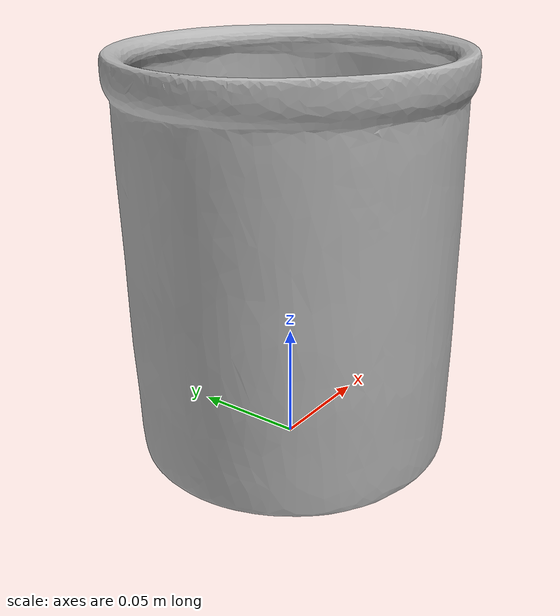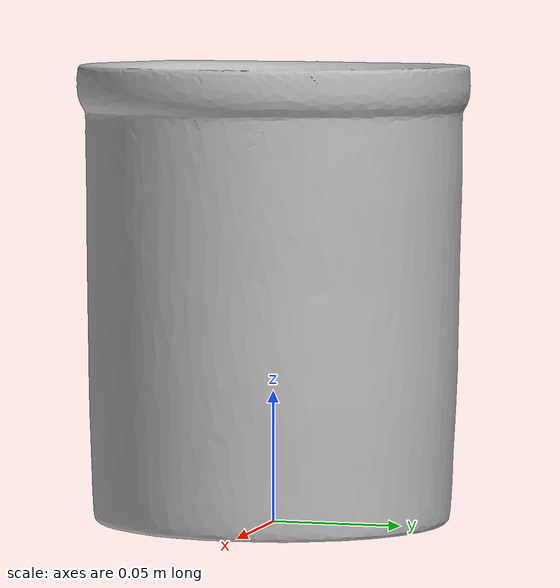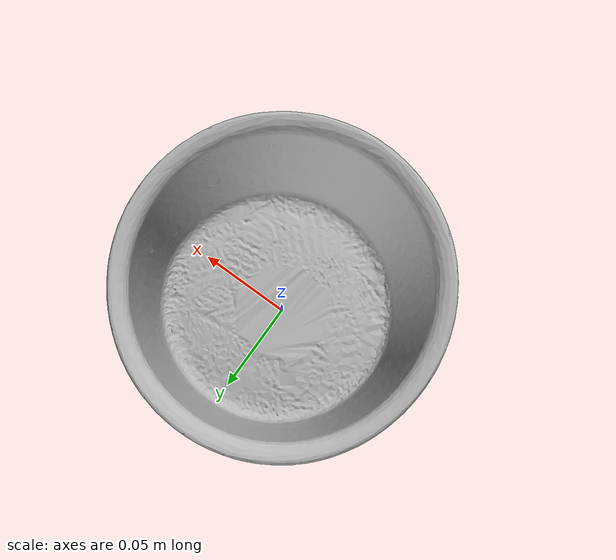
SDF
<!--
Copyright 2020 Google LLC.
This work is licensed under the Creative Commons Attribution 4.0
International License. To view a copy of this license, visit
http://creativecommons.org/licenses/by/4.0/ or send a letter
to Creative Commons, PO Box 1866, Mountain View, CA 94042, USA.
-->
<?xml version="1.0" ?>
<sdf version="1.6">
  <model name="BIA_Cordon_Bleu_White_Porcelain_Utensil_Holder_900028">
    <link name="link_0">
      <visual name="visual">
        <geometry>
          <mesh>
            <uri>meshes/model.obj</uri>
          </mesh>
        </geometry>
      </visual>
      <collision name="collision_0">
        <geometry>
          <mesh>
            <uri>meshes/model.obj</uri>
          </mesh>
        </geometry>
      </collision>
    </link>
  </model>
</sdf>
